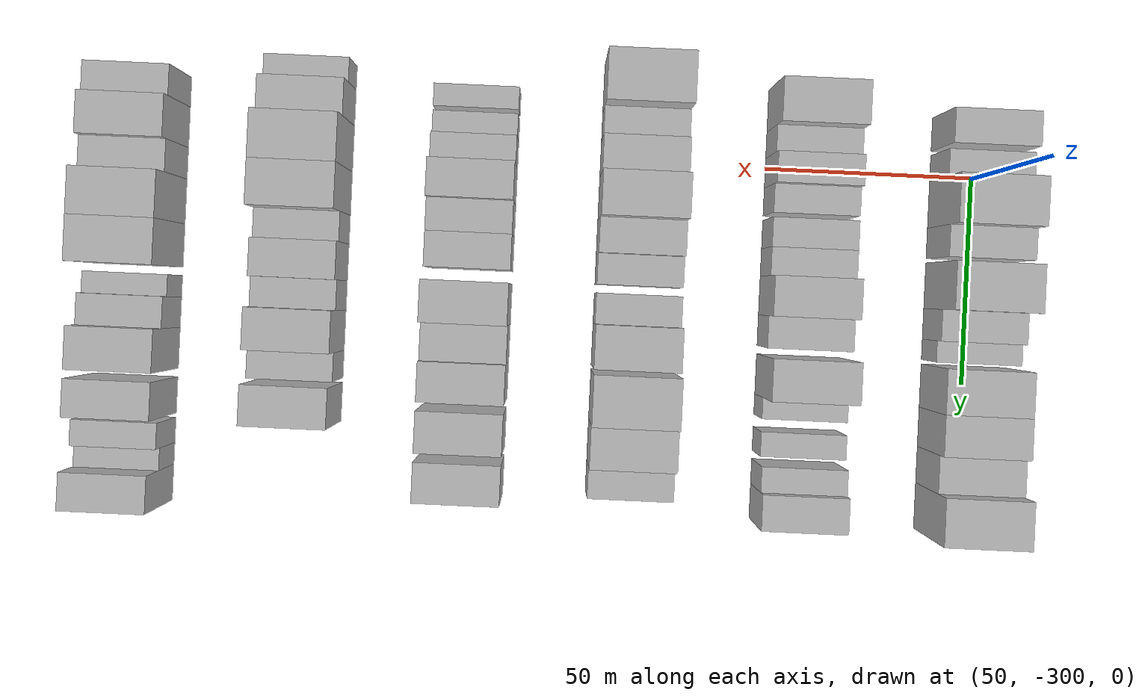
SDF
<sdf version="1.6">
 <world name="default">
  <model name="building_36">
   <static>1</static>
   <pose>50.0000 -310.2682 0 0.000000 0.000000 0.000000</pose>
   <link name="link">
    <pose>0 0 9.00 0 0 0</pose>
    <collision name="collision"><geometry><box><size>20.0000 8.1281 18.0000</size></box></geometry></collision>
    <visual name="visual">
     <cast_shadows>0</cast_shadows>
     <geometry><box><size>20.0000 8.1281 18.0000</size></box></geometry>
     <material>
      <script>
       <uri>model://HANNAS_wall/materials/scripts</uri>
       <uri>model://HANNAS_wall/materials/textures</uri>
       <name>vrc/HANNAS_wall</name>
      </script>
     </material>
    </visual>
   </link>
  </model>
  <model name="building_37">
   <static>1</static>
   <pose>50.0000 -302.0606 0 0.000000 0.000000 0.000000</pose>
   <link name="link">
    <pose>0 0 7.50 0 0 0</pose>
    <collision name="collision"><geometry><box><size>20.0000 6.2870 15.0000</size></box></geometry></collision>
    <visual name="visual">
     <cast_shadows>0</cast_shadows>
     <geometry><box><size>20.0000 6.2870 15.0000</size></box></geometry>
     <material>
      <script>
       <uri>model://HANNAS_wall/materials/scripts</uri>
       <uri>model://HANNAS_wall/materials/textures</uri>
       <name>vrc/HANNAS_wall</name>
      </script>
     </material>
    </visual>
   </link>
  </model>
  <model name="building_38">
   <static>1</static>
   <pose>50.0000 -293.2327 0 0.000000 0.000000 0.000000</pose>
   <link name="link">
    <pose>0 0 12.00 0 0 0</pose>
    <collision name="collision"><geometry><box><size>20.0000 11.3690 24.0000</size></box></geometry></collision>
    <visual name="visual">
     <cast_shadows>0</cast_shadows>
     <geometry><box><size>20.0000 11.3690 24.0000</size></box></geometry>
     <material>
      <script>
       <uri>model://HANNAS_wall/materials/scripts</uri>
       <uri>model://HANNAS_wall/materials/textures</uri>
       <name>vrc/HANNAS_wall</name>
      </script>
     </material>
    </visual>
   </link>
  </model>
  <model name="building_39">
   <static>1</static>
   <pose>50.0000 -283.8331 0 0.000000 0.000000 0.000000</pose>
   <link name="link">
    <pose>0 0 9.00 0 0 0</pose>
    <collision name="collision"><geometry><box><size>20.0000 7.4301 18.0000</size></box></geometry></collision>
    <visual name="visual">
     <cast_shadows>0</cast_shadows>
     <geometry><box><size>20.0000 7.4301 18.0000</size></box></geometry>
     <material>
      <script>
       <uri>model://HANNAS_wall/materials/scripts</uri>
       <uri>model://HANNAS_wall/materials/textures</uri>
       <name>vrc/HANNAS_wall</name>
      </script>
     </material>
    </visual>
   </link>
  </model>
  <model name="building_40">
   <static>1</static>
   <pose>50.0000 -273.5586 0 0.000000 0.000000 0.000000</pose>
   <link name="link">
    <pose>0 0 12.00 0 0 0</pose>
    <collision name="collision"><geometry><box><size>20.0000 11.1189 24.0000</size></box></geometry></collision>
    <visual name="visual">
     <cast_shadows>0</cast_shadows>
     <geometry><box><size>20.0000 11.1189 24.0000</size></box></geometry>
     <material>
      <script>
       <uri>model://HANNAS_wall/materials/scripts</uri>
       <uri>model://HANNAS_wall/materials/textures</uri>
       <name>vrc/HANNAS_wall</name>
      </script>
     </material>
    </visual>
   </link>
  </model>
  <model name="building_41">
   <static>1</static>
   <pose>50.0000 -264.3199 0 0.000000 0.000000 0.000000</pose>
   <link name="link">
    <pose>0 0 7.50 0 0 0</pose>
    <collision name="collision"><geometry><box><size>20.0000 7.3586 15.0000</size></box></geometry></collision>
    <visual name="visual">
     <cast_shadows>0</cast_shadows>
     <geometry><box><size>20.0000 7.3586 15.0000</size></box></geometry>
     <material>
      <script>
       <uri>model://HANNAS_wall/materials/scripts</uri>
       <uri>model://HANNAS_wall/materials/textures</uri>
       <name>vrc/HANNAS_wall</name>
      </script>
     </material>
    </visual>
   </link>
  </model>
  <model name="building_42">
   <static>1</static>
   <pose>50.0000 -258.1257 0 0.000000 0.000000 0.000000</pose>
   <link name="link">
    <pose>0 0 6.00 0 0 0</pose>
    <collision name="collision"><geometry><box><size>20.0000 5.0299 12.0000</size></box></geometry></collision>
    <visual name="visual">
     <cast_shadows>0</cast_shadows>
     <geometry><box><size>20.0000 5.0299 12.0000</size></box></geometry>
     <material>
      <script>
       <uri>model://HANNAS_wall/materials/scripts</uri>
       <uri>model://HANNAS_wall/materials/textures</uri>
       <name>vrc/HANNAS_wall</name>
      </script>
     </material>
    </visual>
   </link>
  </model>
  <model name="building_43">
   <static>1</static>
   <pose>50.0000 -249.3676 0 0.000000 0.000000 0.000000</pose>
   <link name="link">
    <pose>0 0 10.50 0 0 0</pose>
    <collision name="collision"><geometry><box><size>20.0000 10.4863 21.0000</size></box></geometry></collision>
    <visual name="visual">
     <cast_shadows>0</cast_shadows>
     <geometry><box><size>20.0000 10.4863 21.0000</size></box></geometry>
     <material>
      <script>
       <uri>model://HANNAS_wall/materials/scripts</uri>
       <uri>model://HANNAS_wall/materials/textures</uri>
       <name>vrc/HANNAS_wall</name>
      </script>
     </material>
    </visual>
   </link>
  </model>
  <model name="building_44">
   <static>1</static>
   <pose>50.0000 -239.3578 0 0.000000 0.000000 0.000000</pose>
   <link name="link">
    <pose>0 0 10.50 0 0 0</pose>
    <collision name="collision"><geometry><box><size>20.0000 9.5332 21.0000</size></box></geometry></collision>
    <visual name="visual">
     <cast_shadows>0</cast_shadows>
     <geometry><box><size>20.0000 9.5332 21.0000</size></box></geometry>
     <material>
      <script>
       <uri>model://HANNAS_wall/materials/scripts</uri>
       <uri>model://HANNAS_wall/materials/textures</uri>
       <name>vrc/HANNAS_wall</name>
      </script>
     </material>
    </visual>
   </link>
  </model>
  <model name="building_45">
   <static>1</static>
   <pose>50.0000 -230.1755 0 0.000000 0.000000 0.000000</pose>
   <link name="link">
    <pose>0 0 9.00 0 0 0</pose>
    <collision name="collision"><geometry><box><size>20.0000 8.8316 18.0000</size></box></geometry></collision>
    <visual name="visual">
     <cast_shadows>0</cast_shadows>
     <geometry><box><size>20.0000 8.8316 18.0000</size></box></geometry>
     <material>
      <script>
       <uri>model://HANNAS_wall/materials/scripts</uri>
       <uri>model://HANNAS_wall/materials/textures</uri>
       <name>vrc/HANNAS_wall</name>
      </script>
     </material>
    </visual>
   </link>
  </model>
  <model name="building_46">
   <static>1</static>
   <pose>50.0000 -220.2064 0 0.000000 0.000000 0.000000</pose>
   <link name="link">
    <pose>0 0 12.00 0 0 0</pose>
    <collision name="collision"><geometry><box><size>20.0000 11.1066 24.0000</size></box></geometry></collision>
    <visual name="visual">
     <cast_shadows>0</cast_shadows>
     <geometry><box><size>20.0000 11.1066 24.0000</size></box></geometry>
     <material>
      <script>
       <uri>model://HANNAS_wall/materials/scripts</uri>
       <uri>model://HANNAS_wall/materials/textures</uri>
       <name>vrc/HANNAS_wall</name>
      </script>
     </material>
    </visual>
   </link>
  </model>
  <model name="building_174">
   <static>1</static>
   <pose>90.0000 -314.0239 0 0.000000 0.000000 0.000000</pose>
   <link name="link">
    <pose>0 0 10.50 0 0 0</pose>
    <collision name="collision"><geometry><box><size>20.0000 10.2021 21.0000</size></box></geometry></collision>
    <visual name="visual">
     <cast_shadows>0</cast_shadows>
     <geometry><box><size>20.0000 10.2021 21.0000</size></box></geometry>
     <material>
      <script>
       <uri>model://HANNAS_wall/materials/scripts</uri>
       <uri>model://HANNAS_wall/materials/textures</uri>
       <name>vrc/HANNAS_wall</name>
      </script>
     </material>
    </visual>
   </link>
  </model>
  <model name="building_175">
   <static>1</static>
   <pose>90.0000 -305.7463 0 0.000000 0.000000 0.000000</pose>
   <link name="link">
    <pose>0 0 7.50 0 0 0</pose>
    <collision name="collision"><geometry><box><size>20.0000 6.3532 15.0000</size></box></geometry></collision>
    <visual name="visual">
     <cast_shadows>0</cast_shadows>
     <geometry><box><size>20.0000 6.3532 15.0000</size></box></geometry>
     <material>
      <script>
       <uri>model://HANNAS_wall/materials/scripts</uri>
       <uri>model://HANNAS_wall/materials/textures</uri>
       <name>vrc/HANNAS_wall</name>
      </script>
     </material>
    </visual>
   </link>
  </model>
  <model name="building_176">
   <static>1</static>
   <pose>90.0000 -298.9471 0 0.000000 0.000000 0.000000</pose>
   <link name="link">
    <pose>0 0 9.00 0 0 0</pose>
    <collision name="collision"><geometry><box><size>20.0000 7.2453 18.0000</size></box></geometry></collision>
    <visual name="visual">
     <cast_shadows>0</cast_shadows>
     <geometry><box><size>20.0000 7.2453 18.0000</size></box></geometry>
     <material>
      <script>
       <uri>model://HANNAS_wall/materials/scripts</uri>
       <uri>model://HANNAS_wall/materials/textures</uri>
       <name>vrc/HANNAS_wall</name>
      </script>
     </material>
    </visual>
   </link>
  </model>
  <model name="building_177">
   <static>1</static>
   <pose>90.0000 -291.9489 0 0.000000 0.000000 0.000000</pose>
   <link name="link">
    <pose>0 0 7.50 0 0 0</pose>
    <collision name="collision"><geometry><box><size>20.0000 6.7512 15.0000</size></box></geometry></collision>
    <visual name="visual">
     <cast_shadows>0</cast_shadows>
     <geometry><box><size>20.0000 6.7512 15.0000</size></box></geometry>
     <material>
      <script>
       <uri>model://HANNAS_wall/materials/scripts</uri>
       <uri>model://HANNAS_wall/materials/textures</uri>
       <name>vrc/HANNAS_wall</name>
      </script>
     </material>
    </visual>
   </link>
  </model>
  <model name="building_178">
   <static>1</static>
   <pose>90.0000 -284.1256 0 0.000000 0.000000 0.000000</pose>
   <link name="link">
    <pose>0 0 7.50 0 0 0</pose>
    <collision name="collision"><geometry><box><size>20.0000 6.8954 15.0000</size></box></geometry></collision>
    <visual name="visual">
     <cast_shadows>0</cast_shadows>
     <geometry><box><size>20.0000 6.8954 15.0000</size></box></geometry>
     <material>
      <script>
       <uri>model://HANNAS_wall/materials/scripts</uri>
       <uri>model://HANNAS_wall/materials/textures</uri>
       <name>vrc/HANNAS_wall</name>
      </script>
     </material>
    </visual>
   </link>
  </model>
  <model name="building_179">
   <static>1</static>
   <pose>90.0000 -277.3339 0 0.000000 0.000000 0.000000</pose>
   <link name="link">
    <pose>0 0 7.50 0 0 0</pose>
    <collision name="collision"><geometry><box><size>20.0000 6.6880 15.0000</size></box></geometry></collision>
    <visual name="visual">
     <cast_shadows>0</cast_shadows>
     <geometry><box><size>20.0000 6.6880 15.0000</size></box></geometry>
     <material>
      <script>
       <uri>model://HANNAS_wall/materials/scripts</uri>
       <uri>model://HANNAS_wall/materials/textures</uri>
       <name>vrc/HANNAS_wall</name>
      </script>
     </material>
    </visual>
   </link>
  </model>
  <model name="building_180">
   <static>1</static>
   <pose>90.0000 -269.3341 0 0.000000 0.000000 0.000000</pose>
   <link name="link">
    <pose>0 0 10.50 0 0 0</pose>
    <collision name="collision"><geometry><box><size>20.0000 9.3115 21.0000</size></box></geometry></collision>
    <visual name="visual">
     <cast_shadows>0</cast_shadows>
     <geometry><box><size>20.0000 9.3115 21.0000</size></box></geometry>
     <material>
      <script>
       <uri>model://HANNAS_wall/materials/scripts</uri>
       <uri>model://HANNAS_wall/materials/textures</uri>
       <name>vrc/HANNAS_wall</name>
      </script>
     </material>
    </visual>
   </link>
  </model>
  <model name="building_181">
   <static>1</static>
   <pose>90.0000 -260.9317 0 0.000000 0.000000 0.000000</pose>
   <link name="link">
    <pose>0 0 7.50 0 0 0</pose>
    <collision name="collision"><geometry><box><size>20.0000 7.4934 15.0000</size></box></geometry></collision>
    <visual name="visual">
     <cast_shadows>0</cast_shadows>
     <geometry><box><size>20.0000 7.4934 15.0000</size></box></geometry>
     <material>
      <script>
       <uri>model://HANNAS_wall/materials/scripts</uri>
       <uri>model://HANNAS_wall/materials/textures</uri>
       <name>vrc/HANNAS_wall</name>
      </script>
     </material>
    </visual>
   </link>
  </model>
  <model name="building_182">
   <static>1</static>
   <pose>90.0000 -250.3432 0 0.000000 0.000000 0.000000</pose>
   <link name="link">
    <pose>0 0 12.00 0 0 0</pose>
    <collision name="collision"><geometry><box><size>20.0000 9.6837 24.0000</size></box></geometry></collision>
    <visual name="visual">
     <cast_shadows>0</cast_shadows>
     <geometry><box><size>20.0000 9.6837 24.0000</size></box></geometry>
     <material>
      <script>
       <uri>model://HANNAS_wall/materials/scripts</uri>
       <uri>model://HANNAS_wall/materials/textures</uri>
       <name>vrc/HANNAS_wall</name>
      </script>
     </material>
    </visual>
   </link>
  </model>
  <model name="building_183">
   <static>1</static>
   <pose>90.0000 -243.0185 0 0.000000 0.000000 0.000000</pose>
   <link name="link">
    <pose>0 0 6.00 0 0 0</pose>
    <collision name="collision"><geometry><box><size>20.0000 4.9656 12.0000</size></box></geometry></collision>
    <visual name="visual">
     <cast_shadows>0</cast_shadows>
     <geometry><box><size>20.0000 4.9656 12.0000</size></box></geometry>
     <material>
      <script>
       <uri>model://HANNAS_wall/materials/scripts</uri>
       <uri>model://HANNAS_wall/materials/textures</uri>
       <name>vrc/HANNAS_wall</name>
      </script>
     </material>
    </visual>
   </link>
  </model>
  <model name="building_184">
   <static>1</static>
   <pose>90.0000 -234.6496 0 0.000000 0.000000 0.000000</pose>
   <link name="link">
    <pose>0 0 6.00 0 0 0</pose>
    <collision name="collision"><geometry><box><size>20.0000 5.7723 12.0000</size></box></geometry></collision>
    <visual name="visual">
     <cast_shadows>0</cast_shadows>
     <geometry><box><size>20.0000 5.7723 12.0000</size></box></geometry>
     <material>
      <script>
       <uri>model://HANNAS_wall/materials/scripts</uri>
       <uri>model://HANNAS_wall/materials/textures</uri>
       <name>vrc/HANNAS_wall</name>
      </script>
     </material>
    </visual>
   </link>
  </model>
  <model name="building_185">
   <static>1</static>
   <pose>90.0000 -226.7459 0 0.000000 0.000000 0.000000</pose>
   <link name="link">
    <pose>0 0 7.50 0 0 0</pose>
    <collision name="collision"><geometry><box><size>20.0000 6.0350 15.0000</size></box></geometry></collision>
    <visual name="visual">
     <cast_shadows>0</cast_shadows>
     <geometry><box><size>20.0000 6.0350 15.0000</size></box></geometry>
     <material>
      <script>
       <uri>model://HANNAS_wall/materials/scripts</uri>
       <uri>model://HANNAS_wall/materials/textures</uri>
       <name>vrc/HANNAS_wall</name>
      </script>
     </material>
    </visual>
   </link>
  </model>
  <model name="building_186">
   <static>1</static>
   <pose>90.0000 -219.5596 0 0.000000 0.000000 0.000000</pose>
   <link name="link">
    <pose>0 0 9.00 0 0 0</pose>
    <collision name="collision"><geometry><box><size>20.0000 8.3377 18.0000</size></box></geometry></collision>
    <visual name="visual">
     <cast_shadows>0</cast_shadows>
     <geometry><box><size>20.0000 8.3377 18.0000</size></box></geometry>
     <material>
      <script>
       <uri>model://HANNAS_wall/materials/scripts</uri>
       <uri>model://HANNAS_wall/materials/textures</uri>
       <name>vrc/HANNAS_wall</name>
      </script>
     </material>
    </visual>
   </link>
  </model>
  <model name="building_315">
   <static>1</static>
   <pose>130.0000 -317.4107 0 0.000000 0.000000 0.000000</pose>
   <link name="link">
    <pose>0 0 12.00 0 0 0</pose>
    <collision name="collision"><geometry><box><size>20.0000 11.8646 24.0000</size></box></geometry></collision>
    <visual name="visual">
     <cast_shadows>0</cast_shadows>
     <geometry><box><size>20.0000 11.8646 24.0000</size></box></geometry>
     <material>
      <script>
       <uri>model://HANNAS_wall/materials/scripts</uri>
       <uri>model://HANNAS_wall/materials/textures</uri>
       <name>vrc/HANNAS_wall</name>
      </script>
     </material>
    </visual>
   </link>
  </model>
  <model name="building_316">
   <static>1</static>
   <pose>130.0000 -308.0843 0 0.000000 0.000000 0.000000</pose>
   <link name="link">
    <pose>0 0 7.50 0 0 0</pose>
    <collision name="collision"><geometry><box><size>20.0000 6.7880 15.0000</size></box></geometry></collision>
    <visual name="visual">
     <cast_shadows>0</cast_shadows>
     <geometry><box><size>20.0000 6.7880 15.0000</size></box></geometry>
     <material>
      <script>
       <uri>model://HANNAS_wall/materials/scripts</uri>
       <uri>model://HANNAS_wall/materials/textures</uri>
       <name>vrc/HANNAS_wall</name>
      </script>
     </material>
    </visual>
   </link>
  </model>
  <model name="building_317">
   <static>1</static>
   <pose>130.0000 -300.3633 0 0.000000 0.000000 0.000000</pose>
   <link name="link">
    <pose>0 0 9.00 0 0 0</pose>
    <collision name="collision"><geometry><box><size>20.0000 8.6539 18.0000</size></box></geometry></collision>
    <visual name="visual">
     <cast_shadows>0</cast_shadows>
     <geometry><box><size>20.0000 8.6539 18.0000</size></box></geometry>
     <material>
      <script>
       <uri>model://HANNAS_wall/materials/scripts</uri>
       <uri>model://HANNAS_wall/materials/textures</uri>
       <name>vrc/HANNAS_wall</name>
      </script>
     </material>
    </visual>
   </link>
  </model>
  <model name="building_318">
   <static>1</static>
   <pose>130.0000 -290.8211 0 0.000000 0.000000 0.000000</pose>
   <link name="link">
    <pose>0 0 12.00 0 0 0</pose>
    <collision name="collision"><geometry><box><size>20.0000 10.4305 24.0000</size></box></geometry></collision>
    <visual name="visual">
     <cast_shadows>0</cast_shadows>
     <geometry><box><size>20.0000 10.4305 24.0000</size></box></geometry>
     <material>
      <script>
       <uri>model://HANNAS_wall/materials/scripts</uri>
       <uri>model://HANNAS_wall/materials/textures</uri>
       <name>vrc/HANNAS_wall</name>
      </script>
     </material>
    </visual>
   </link>
  </model>
  <model name="building_319">
   <static>1</static>
   <pose>130.0000 -281.4815 0 0.000000 0.000000 0.000000</pose>
   <link name="link">
    <pose>0 0 9.00 0 0 0</pose>
    <collision name="collision"><geometry><box><size>20.0000 8.2488 18.0000</size></box></geometry></collision>
    <visual name="visual">
     <cast_shadows>0</cast_shadows>
     <geometry><box><size>20.0000 8.2488 18.0000</size></box></geometry>
     <material>
      <script>
       <uri>model://HANNAS_wall/materials/scripts</uri>
       <uri>model://HANNAS_wall/materials/textures</uri>
       <name>vrc/HANNAS_wall</name>
      </script>
     </material>
    </visual>
   </link>
  </model>
  <model name="building_320">
   <static>1</static>
   <pose>130.0000 -273.7382 0 0.000000 0.000000 0.000000</pose>
   <link name="link">
    <pose>0 0 7.50 0 0 0</pose>
    <collision name="collision"><geometry><box><size>20.0000 7.2378 15.0000</size></box></geometry></collision>
    <visual name="visual">
     <cast_shadows>0</cast_shadows>
     <geometry><box><size>20.0000 7.2378 15.0000</size></box></geometry>
     <material>
      <script>
       <uri>model://HANNAS_wall/materials/scripts</uri>
       <uri>model://HANNAS_wall/materials/textures</uri>
       <name>vrc/HANNAS_wall</name>
      </script>
     </material>
    </visual>
   </link>
  </model>
  <model name="building_321">
   <static>1</static>
   <pose>130.0000 -264.5063 0 0.000000 0.000000 0.000000</pose>
   <link name="link">
    <pose>0 0 7.50 0 0 0</pose>
    <collision name="collision"><geometry><box><size>20.0000 7.2259 15.0000</size></box></geometry></collision>
    <visual name="visual">
     <cast_shadows>0</cast_shadows>
     <geometry><box><size>20.0000 7.2259 15.0000</size></box></geometry>
     <material>
      <script>
       <uri>model://HANNAS_wall/materials/scripts</uri>
       <uri>model://HANNAS_wall/materials/textures</uri>
       <name>vrc/HANNAS_wall</name>
      </script>
     </material>
    </visual>
   </link>
  </model>
  <model name="building_322">
   <static>1</static>
   <pose>130.0000 -255.8008 0 0.000000 0.000000 0.000000</pose>
   <link name="link">
    <pose>0 0 10.50 0 0 0</pose>
    <collision name="collision"><geometry><box><size>20.0000 10.1851 21.0000</size></box></geometry></collision>
    <visual name="visual">
     <cast_shadows>0</cast_shadows>
     <geometry><box><size>20.0000 10.1851 21.0000</size></box></geometry>
     <material>
      <script>
       <uri>model://HANNAS_wall/materials/scripts</uri>
       <uri>model://HANNAS_wall/materials/textures</uri>
       <name>vrc/HANNAS_wall</name>
      </script>
     </material>
    </visual>
   </link>
  </model>
  <model name="building_323">
   <static>1</static>
   <pose>130.0000 -243.7885 0 0.000000 0.000000 0.000000</pose>
   <link name="link">
    <pose>0 0 12.00 0 0 0</pose>
    <collision name="collision"><geometry><box><size>20.0000 11.8395 24.0000</size></box></geometry></collision>
    <visual name="visual">
     <cast_shadows>0</cast_shadows>
     <geometry><box><size>20.0000 11.8395 24.0000</size></box></geometry>
     <material>
      <script>
       <uri>model://HANNAS_wall/materials/scripts</uri>
       <uri>model://HANNAS_wall/materials/textures</uri>
       <name>vrc/HANNAS_wall</name>
      </script>
     </material>
    </visual>
   </link>
  </model>
  <model name="building_324">
   <static>1</static>
   <pose>130.0000 -232.9279 0 0.000000 0.000000 0.000000</pose>
   <link name="link">
    <pose>0 0 10.50 0 0 0</pose>
    <collision name="collision"><geometry><box><size>20.0000 9.8816 21.0000</size></box></geometry></collision>
    <visual name="visual">
     <cast_shadows>0</cast_shadows>
     <geometry><box><size>20.0000 9.8816 21.0000</size></box></geometry>
     <material>
      <script>
       <uri>model://HANNAS_wall/materials/scripts</uri>
       <uri>model://HANNAS_wall/materials/textures</uri>
       <name>vrc/HANNAS_wall</name>
      </script>
     </material>
    </visual>
   </link>
  </model>
  <model name="building_325">
   <static>1</static>
   <pose>130.0000 -224.2596 0 0.000000 0.000000 0.000000</pose>
   <link name="link">
    <pose>0 0 7.50 0 0 0</pose>
    <collision name="collision"><geometry><box><size>20.0000 7.4551 15.0000</size></box></geometry></collision>
    <visual name="visual">
     <cast_shadows>0</cast_shadows>
     <geometry><box><size>20.0000 7.4551 15.0000</size></box></geometry>
     <material>
      <script>
       <uri>model://HANNAS_wall/materials/scripts</uri>
       <uri>model://HANNAS_wall/materials/textures</uri>
       <name>vrc/HANNAS_wall</name>
      </script>
     </material>
    </visual>
   </link>
  </model>
  <model name="building_441">
   <static>1</static>
   <pose>170.0000 -312.6405 0 0.000000 0.000000 0.000000</pose>
   <link name="link">
    <pose>0 0 6.00 0 0 0</pose>
    <collision name="collision"><geometry><box><size>20.0000 5.2715 12.0000</size></box></geometry></collision>
    <visual name="visual">
     <cast_shadows>0</cast_shadows>
     <geometry><box><size>20.0000 5.2715 12.0000</size></box></geometry>
     <material>
      <script>
       <uri>model://HANNAS_wall/materials/scripts</uri>
       <uri>model://HANNAS_wall/materials/textures</uri>
       <name>vrc/HANNAS_wall</name>
      </script>
     </material>
    </visual>
   </link>
  </model>
  <model name="building_442">
   <static>1</static>
   <pose>170.0000 -306.3109 0 0.000000 0.000000 0.000000</pose>
   <link name="link">
    <pose>0 0 6.00 0 0 0</pose>
    <collision name="collision"><geometry><box><size>20.0000 5.3875 12.0000</size></box></geometry></collision>
    <visual name="visual">
     <cast_shadows>0</cast_shadows>
     <geometry><box><size>20.0000 5.3875 12.0000</size></box></geometry>
     <material>
      <script>
       <uri>model://HANNAS_wall/materials/scripts</uri>
       <uri>model://HANNAS_wall/materials/textures</uri>
       <name>vrc/HANNAS_wall</name>
      </script>
     </material>
    </visual>
   </link>
  </model>
  <model name="building_443">
   <static>1</static>
   <pose>170.0000 -300.3593 0 0.000000 0.000000 0.000000</pose>
   <link name="link">
    <pose>0 0 7.50 0 0 0</pose>
    <collision name="collision"><geometry><box><size>20.0000 6.5158 15.0000</size></box></geometry></collision>
    <visual name="visual">
     <cast_shadows>0</cast_shadows>
     <geometry><box><size>20.0000 6.5158 15.0000</size></box></geometry>
     <material>
      <script>
       <uri>model://HANNAS_wall/materials/scripts</uri>
       <uri>model://HANNAS_wall/materials/textures</uri>
       <name>vrc/HANNAS_wall</name>
      </script>
     </material>
    </visual>
   </link>
  </model>
  <model name="building_444">
   <static>1</static>
   <pose>170.0000 -292.6764 0 0.000000 0.000000 0.000000</pose>
   <link name="link">
    <pose>0 0 10.50 0 0 0</pose>
    <collision name="collision"><geometry><box><size>20.0000 8.8499 21.0000</size></box></geometry></collision>
    <visual name="visual">
     <cast_shadows>0</cast_shadows>
     <geometry><box><size>20.0000 8.8499 21.0000</size></box></geometry>
     <material>
      <script>
       <uri>model://HANNAS_wall/materials/scripts</uri>
       <uri>model://HANNAS_wall/materials/textures</uri>
       <name>vrc/HANNAS_wall</name>
      </script>
     </material>
    </visual>
   </link>
  </model>
  <model name="building_445">
   <static>1</static>
   <pose>170.0000 -284.4262 0 0.000000 0.000000 0.000000</pose>
   <link name="link">
    <pose>0 0 9.00 0 0 0</pose>
    <collision name="collision"><geometry><box><size>20.0000 7.6505 18.0000</size></box></geometry></collision>
    <visual name="visual">
     <cast_shadows>0</cast_shadows>
     <geometry><box><size>20.0000 7.6505 18.0000</size></box></geometry>
     <material>
      <script>
       <uri>model://HANNAS_wall/materials/scripts</uri>
       <uri>model://HANNAS_wall/materials/textures</uri>
       <name>vrc/HANNAS_wall</name>
      </script>
     </material>
    </visual>
   </link>
  </model>
  <model name="building_446">
   <static>1</static>
   <pose>170.0000 -276.4540 0 0.000000 0.000000 0.000000</pose>
   <link name="link">
    <pose>0 0 9.00 0 0 0</pose>
    <collision name="collision"><geometry><box><size>20.0000 8.2937 18.0000</size></box></geometry></collision>
    <visual name="visual">
     <cast_shadows>0</cast_shadows>
     <geometry><box><size>20.0000 8.2937 18.0000</size></box></geometry>
     <material>
      <script>
       <uri>model://HANNAS_wall/materials/scripts</uri>
       <uri>model://HANNAS_wall/materials/textures</uri>
       <name>vrc/HANNAS_wall</name>
      </script>
     </material>
    </visual>
   </link>
  </model>
  <model name="building_447">
   <static>1</static>
   <pose>170.0000 -264.4535 0 0.000000 0.000000 0.000000</pose>
   <link name="link">
    <pose>0 0 12.00 0 0 0</pose>
    <collision name="collision"><geometry><box><size>20.0000 9.7073 24.0000</size></box></geometry></collision>
    <visual name="visual">
     <cast_shadows>0</cast_shadows>
     <geometry><box><size>20.0000 9.7073 24.0000</size></box></geometry>
     <material>
      <script>
       <uri>model://HANNAS_wall/materials/scripts</uri>
       <uri>model://HANNAS_wall/materials/textures</uri>
       <name>vrc/HANNAS_wall</name>
      </script>
     </material>
    </visual>
   </link>
  </model>
  <model name="building_448">
   <static>1</static>
   <pose>170.0000 -255.1632 0 0.000000 0.000000 0.000000</pose>
   <link name="link">
    <pose>0 0 9.00 0 0 0</pose>
    <collision name="collision"><geometry><box><size>20.0000 8.8734 18.0000</size></box></geometry></collision>
    <visual name="visual">
     <cast_shadows>0</cast_shadows>
     <geometry><box><size>20.0000 8.8734 18.0000</size></box></geometry>
     <material>
      <script>
       <uri>model://HANNAS_wall/materials/scripts</uri>
       <uri>model://HANNAS_wall/materials/textures</uri>
       <name>vrc/HANNAS_wall</name>
      </script>
     </material>
    </visual>
   </link>
  </model>
  <model name="building_449">
   <static>1</static>
   <pose>170.0000 -246.1115 0 0.000000 0.000000 0.000000</pose>
   <link name="link">
    <pose>0 0 10.50 0 0 0</pose>
    <collision name="collision"><geometry><box><size>20.0000 9.2299 21.0000</size></box></geometry></collision>
    <visual name="visual">
     <cast_shadows>0</cast_shadows>
     <geometry><box><size>20.0000 9.2299 21.0000</size></box></geometry>
     <material>
      <script>
       <uri>model://HANNAS_wall/materials/scripts</uri>
       <uri>model://HANNAS_wall/materials/textures</uri>
       <name>vrc/HANNAS_wall</name>
      </script>
     </material>
    </visual>
   </link>
  </model>
  <model name="building_450">
   <static>1</static>
   <pose>170.0000 -234.6754 0 0.000000 0.000000 0.000000</pose>
   <link name="link">
    <pose>0 0 10.50 0 0 0</pose>
    <collision name="collision"><geometry><box><size>20.0000 9.6423 21.0000</size></box></geometry></collision>
    <visual name="visual">
     <cast_shadows>0</cast_shadows>
     <geometry><box><size>20.0000 9.6423 21.0000</size></box></geometry>
     <material>
      <script>
       <uri>model://HANNAS_wall/materials/scripts</uri>
       <uri>model://HANNAS_wall/materials/textures</uri>
       <name>vrc/HANNAS_wall</name>
      </script>
     </material>
    </visual>
   </link>
  </model>
  <model name="building_451">
   <static>1</static>
   <pose>170.0000 -223.2006 0 0.000000 0.000000 0.000000</pose>
   <link name="link">
    <pose>0 0 10.50 0 0 0</pose>
    <collision name="collision"><geometry><box><size>20.0000 9.3072 21.0000</size></box></geometry></collision>
    <visual name="visual">
     <cast_shadows>0</cast_shadows>
     <geometry><box><size>20.0000 9.3072 21.0000</size></box></geometry>
     <material>
      <script>
       <uri>model://HANNAS_wall/materials/scripts</uri>
       <uri>model://HANNAS_wall/materials/textures</uri>
       <name>vrc/HANNAS_wall</name>
      </script>
     </material>
    </visual>
   </link>
  </model>
  <model name="building_581">
   <static>1</static>
   <pose>210.0000 -317.4663 0 0.000000 0.000000 0.000000</pose>
   <link name="link">
    <pose>0 0 6.00 0 0 0</pose>
    <collision name="collision"><geometry><box><size>20.0000 5.7768 12.0000</size></box></geometry></collision>
    <visual name="visual">
     <cast_shadows>0</cast_shadows>
     <geometry><box><size>20.0000 5.7768 12.0000</size></box></geometry>
     <material>
      <script>
       <uri>model://HANNAS_wall/materials/scripts</uri>
       <uri>model://HANNAS_wall/materials/textures</uri>
       <name>vrc/HANNAS_wall</name>
      </script>
     </material>
    </visual>
   </link>
  </model>
  <model name="building_582">
   <static>1</static>
   <pose>210.0000 -310.2305 0 0.000000 0.000000 0.000000</pose>
   <link name="link">
    <pose>0 0 9.00 0 0 0</pose>
    <collision name="collision"><geometry><box><size>20.0000 8.6950 18.0000</size></box></geometry></collision>
    <visual name="visual">
     <cast_shadows>0</cast_shadows>
     <geometry><box><size>20.0000 8.6950 18.0000</size></box></geometry>
     <material>
      <script>
       <uri>model://HANNAS_wall/materials/scripts</uri>
       <uri>model://HANNAS_wall/materials/textures</uri>
       <name>vrc/HANNAS_wall</name>
      </script>
     </material>
    </visual>
   </link>
  </model>
  <model name="building_583">
   <static>1</static>
   <pose>210.0000 -300.3068 0 0.000000 0.000000 0.000000</pose>
   <link name="link">
    <pose>0 0 12.00 0 0 0</pose>
    <collision name="collision"><geometry><box><size>20.0000 11.1523 24.0000</size></box></geometry></collision>
    <visual name="visual">
     <cast_shadows>0</cast_shadows>
     <geometry><box><size>20.0000 11.1523 24.0000</size></box></geometry>
     <material>
      <script>
       <uri>model://HANNAS_wall/materials/scripts</uri>
       <uri>model://HANNAS_wall/materials/textures</uri>
       <name>vrc/HANNAS_wall</name>
      </script>
     </material>
    </visual>
   </link>
  </model>
  <model name="building_584">
   <static>1</static>
   <pose>210.0000 -289.4546 0 0.000000 0.000000 0.000000</pose>
   <link name="link">
    <pose>0 0 12.00 0 0 0</pose>
    <collision name="collision"><geometry><box><size>20.0000 10.5522 24.0000</size></box></geometry></collision>
    <visual name="visual">
     <cast_shadows>0</cast_shadows>
     <geometry><box><size>20.0000 10.5522 24.0000</size></box></geometry>
     <material>
      <script>
       <uri>model://HANNAS_wall/materials/scripts</uri>
       <uri>model://HANNAS_wall/materials/textures</uri>
       <name>vrc/HANNAS_wall</name>
      </script>
     </material>
    </visual>
   </link>
  </model>
  <model name="building_585">
   <static>1</static>
   <pose>210.0000 -280.6766 0 0.000000 0.000000 0.000000</pose>
   <link name="link">
    <pose>0 0 7.50 0 0 0</pose>
    <collision name="collision"><geometry><box><size>20.0000 7.0038 15.0000</size></box></geometry></collision>
    <visual name="visual">
     <cast_shadows>0</cast_shadows>
     <geometry><box><size>20.0000 7.0038 15.0000</size></box></geometry>
     <material>
      <script>
       <uri>model://HANNAS_wall/materials/scripts</uri>
       <uri>model://HANNAS_wall/materials/textures</uri>
       <name>vrc/HANNAS_wall</name>
      </script>
     </material>
    </visual>
   </link>
  </model>
  <model name="building_586">
   <static>1</static>
   <pose>210.0000 -272.7328 0 0.000000 0.000000 0.000000</pose>
   <link name="link">
    <pose>0 0 9.00 0 0 0</pose>
    <collision name="collision"><geometry><box><size>20.0000 8.8838 18.0000</size></box></geometry></collision>
    <visual name="visual">
     <cast_shadows>0</cast_shadows>
     <geometry><box><size>20.0000 8.8838 18.0000</size></box></geometry>
     <material>
      <script>
       <uri>model://HANNAS_wall/materials/scripts</uri>
       <uri>model://HANNAS_wall/materials/textures</uri>
       <name>vrc/HANNAS_wall</name>
      </script>
     </material>
    </visual>
   </link>
  </model>
  <model name="building_587">
   <static>1</static>
   <pose>210.0000 -264.7439 0 0.000000 0.000000 0.000000</pose>
   <link name="link">
    <pose>0 0 7.50 0 0 0</pose>
    <collision name="collision"><geometry><box><size>20.0000 7.0941 15.0000</size></box></geometry></collision>
    <visual name="visual">
     <cast_shadows>0</cast_shadows>
     <geometry><box><size>20.0000 7.0941 15.0000</size></box></geometry>
     <material>
      <script>
       <uri>model://HANNAS_wall/materials/scripts</uri>
       <uri>model://HANNAS_wall/materials/textures</uri>
       <name>vrc/HANNAS_wall</name>
      </script>
     </material>
    </visual>
   </link>
  </model>
  <model name="building_588">
   <static>1</static>
   <pose>210.0000 -256.3049 0 0.000000 0.000000 0.000000</pose>
   <link name="link">
    <pose>0 0 10.50 0 0 0</pose>
    <collision name="collision"><geometry><box><size>20.0000 9.7839 21.0000</size></box></geometry></collision>
    <visual name="visual">
     <cast_shadows>0</cast_shadows>
     <geometry><box><size>20.0000 9.7839 21.0000</size></box></geometry>
     <material>
      <script>
       <uri>model://HANNAS_wall/materials/scripts</uri>
       <uri>model://HANNAS_wall/materials/textures</uri>
       <name>vrc/HANNAS_wall</name>
      </script>
     </material>
    </visual>
   </link>
  </model>
  <model name="building_589">
   <static>1</static>
   <pose>210.0000 -248.0198 0 0.000000 0.000000 0.000000</pose>
   <link name="link">
    <pose>0 0 7.50 0 0 0</pose>
    <collision name="collision"><geometry><box><size>20.0000 6.7863 15.0000</size></box></geometry></collision>
    <visual name="visual">
     <cast_shadows>0</cast_shadows>
     <geometry><box><size>20.0000 6.7863 15.0000</size></box></geometry>
     <material>
      <script>
       <uri>model://HANNAS_wall/materials/scripts</uri>
       <uri>model://HANNAS_wall/materials/textures</uri>
       <name>vrc/HANNAS_wall</name>
      </script>
     </material>
    </visual>
   </link>
  </model>
  <model name="building_590">
   <static>1</static>
   <pose>210.0000 -238.8946 0 0.000000 0.000000 0.000000</pose>
   <link name="link">
    <pose>0 0 10.50 0 0 0</pose>
    <collision name="collision"><geometry><box><size>20.0000 9.4641 21.0000</size></box></geometry></collision>
    <visual name="visual">
     <cast_shadows>0</cast_shadows>
     <geometry><box><size>20.0000 9.4641 21.0000</size></box></geometry>
     <material>
      <script>
       <uri>model://HANNAS_wall/materials/scripts</uri>
       <uri>model://HANNAS_wall/materials/textures</uri>
       <name>vrc/HANNAS_wall</name>
      </script>
     </material>
    </visual>
   </link>
  </model>
  <model name="building_719">
   <static>1</static>
   <pose>250.0000 -312.2172 0 0.000000 0.000000 0.000000</pose>
   <link name="link">
    <pose>0 0 9.00 0 0 0</pose>
    <collision name="collision"><geometry><box><size>20.0000 7.2257 18.0000</size></box></geometry></collision>
    <visual name="visual">
     <cast_shadows>0</cast_shadows>
     <geometry><box><size>20.0000 7.2257 18.0000</size></box></geometry>
     <material>
      <script>
       <uri>model://HANNAS_wall/materials/scripts</uri>
       <uri>model://HANNAS_wall/materials/textures</uri>
       <name>vrc/HANNAS_wall</name>
      </script>
     </material>
    </visual>
   </link>
  </model>
  <model name="building_720">
   <static>1</static>
   <pose>250.0000 -303.6729 0 0.000000 0.000000 0.000000</pose>
   <link name="link">
    <pose>0 0 10.50 0 0 0</pose>
    <collision name="collision"><geometry><box><size>20.0000 9.8628 21.0000</size></box></geometry></collision>
    <visual name="visual">
     <cast_shadows>0</cast_shadows>
     <geometry><box><size>20.0000 9.8628 21.0000</size></box></geometry>
     <material>
      <script>
       <uri>model://HANNAS_wall/materials/scripts</uri>
       <uri>model://HANNAS_wall/materials/textures</uri>
       <name>vrc/HANNAS_wall</name>
      </script>
     </material>
    </visual>
   </link>
  </model>
  <model name="building_721">
   <static>1</static>
   <pose>250.0000 -294.9348 0 0.000000 0.000000 0.000000</pose>
   <link name="link">
    <pose>0 0 9.00 0 0 0</pose>
    <collision name="collision"><geometry><box><size>20.0000 7.6135 18.0000</size></box></geometry></collision>
    <visual name="visual">
     <cast_shadows>0</cast_shadows>
     <geometry><box><size>20.0000 7.6135 18.0000</size></box></geometry>
     <material>
      <script>
       <uri>model://HANNAS_wall/materials/scripts</uri>
       <uri>model://HANNAS_wall/materials/textures</uri>
       <name>vrc/HANNAS_wall</name>
      </script>
     </material>
    </visual>
   </link>
  </model>
  <model name="building_722">
   <static>1</static>
   <pose>250.0000 -285.6847 0 0.000000 0.000000 0.000000</pose>
   <link name="link">
    <pose>0 0 12.00 0 0 0</pose>
    <collision name="collision"><geometry><box><size>20.0000 10.8865 24.0000</size></box></geometry></collision>
    <visual name="visual">
     <cast_shadows>0</cast_shadows>
     <geometry><box><size>20.0000 10.8865 24.0000</size></box></geometry>
     <material>
      <script>
       <uri>model://HANNAS_wall/materials/scripts</uri>
       <uri>model://HANNAS_wall/materials/textures</uri>
       <name>vrc/HANNAS_wall</name>
      </script>
     </material>
    </visual>
   </link>
  </model>
  <model name="building_723">
   <static>1</static>
   <pose>250.0000 -274.9724 0 0.000000 0.000000 0.000000</pose>
   <link name="link">
    <pose>0 0 12.00 0 0 0</pose>
    <collision name="collision"><geometry><box><size>20.0000 10.5381 24.0000</size></box></geometry></collision>
    <visual name="visual">
     <cast_shadows>0</cast_shadows>
     <geometry><box><size>20.0000 10.5381 24.0000</size></box></geometry>
     <material>
      <script>
       <uri>model://HANNAS_wall/materials/scripts</uri>
       <uri>model://HANNAS_wall/materials/textures</uri>
       <name>vrc/HANNAS_wall</name>
      </script>
     </material>
    </visual>
   </link>
  </model>
  <model name="building_724">
   <static>1</static>
   <pose>250.0000 -265.1360 0 0.000000 0.000000 0.000000</pose>
   <link name="link">
    <pose>0 0 6.00 0 0 0</pose>
    <collision name="collision"><geometry><box><size>20.0000 5.1348 12.0000</size></box></geometry></collision>
    <visual name="visual">
     <cast_shadows>0</cast_shadows>
     <geometry><box><size>20.0000 5.1348 12.0000</size></box></geometry>
     <material>
      <script>
       <uri>model://HANNAS_wall/materials/scripts</uri>
       <uri>model://HANNAS_wall/materials/textures</uri>
       <name>vrc/HANNAS_wall</name>
      </script>
     </material>
    </visual>
   </link>
  </model>
  <model name="building_725">
   <static>1</static>
   <pose>250.0000 -258.8554 0 0.000000 0.000000 0.000000</pose>
   <link name="link">
    <pose>0 0 7.50 0 0 0</pose>
    <collision name="collision"><geometry><box><size>20.0000 7.4263 15.0000</size></box></geometry></collision>
    <visual name="visual">
     <cast_shadows>0</cast_shadows>
     <geometry><box><size>20.0000 7.4263 15.0000</size></box></geometry>
     <material>
      <script>
       <uri>model://HANNAS_wall/materials/scripts</uri>
       <uri>model://HANNAS_wall/materials/textures</uri>
       <name>vrc/HANNAS_wall</name>
      </script>
     </material>
    </visual>
   </link>
  </model>
  <model name="building_726">
   <static>1</static>
   <pose>250.0000 -250.1316 0 0.000000 0.000000 0.000000</pose>
   <link name="link">
    <pose>0 0 10.50 0 0 0</pose>
    <collision name="collision"><geometry><box><size>20.0000 10.0214 21.0000</size></box></geometry></collision>
    <visual name="visual">
     <cast_shadows>0</cast_shadows>
     <geometry><box><size>20.0000 10.0214 21.0000</size></box></geometry>
     <material>
      <script>
       <uri>model://HANNAS_wall/materials/scripts</uri>
       <uri>model://HANNAS_wall/materials/textures</uri>
       <name>vrc/HANNAS_wall</name>
      </script>
     </material>
    </visual>
   </link>
  </model>
  <model name="building_727">
   <static>1</static>
   <pose>250.0000 -238.7051 0 0.000000 0.000000 0.000000</pose>
   <link name="link">
    <pose>0 0 10.50 0 0 0</pose>
    <collision name="collision"><geometry><box><size>20.0000 8.8317 21.0000</size></box></geometry></collision>
    <visual name="visual">
     <cast_shadows>0</cast_shadows>
     <geometry><box><size>20.0000 8.8317 21.0000</size></box></geometry>
     <material>
      <script>
       <uri>model://HANNAS_wall/materials/scripts</uri>
       <uri>model://HANNAS_wall/materials/textures</uri>
       <name>vrc/HANNAS_wall</name>
      </script>
     </material>
    </visual>
   </link>
  </model>
  <model name="building_728">
   <static>1</static>
   <pose>250.0000 -230.2256 0 0.000000 0.000000 0.000000</pose>
   <link name="link">
    <pose>0 0 7.50 0 0 0</pose>
    <collision name="collision"><geometry><box><size>20.0000 6.1273 15.0000</size></box></geometry></collision>
    <visual name="visual">
     <cast_shadows>0</cast_shadows>
     <geometry><box><size>20.0000 6.1273 15.0000</size></box></geometry>
     <material>
      <script>
       <uri>model://HANNAS_wall/materials/scripts</uri>
       <uri>model://HANNAS_wall/materials/textures</uri>
       <name>vrc/HANNAS_wall</name>
      </script>
     </material>
    </visual>
   </link>
  </model>
  <model name="building_729">
   <static>1</static>
   <pose>250.0000 -224.5297 0 0.000000 0.000000 0.000000</pose>
   <link name="link">
    <pose>0 0 6.00 0 0 0</pose>
    <collision name="collision"><geometry><box><size>20.0000 5.2645 12.0000</size></box></geometry></collision>
    <visual name="visual">
     <cast_shadows>0</cast_shadows>
     <geometry><box><size>20.0000 5.2645 12.0000</size></box></geometry>
     <material>
      <script>
       <uri>model://HANNAS_wall/materials/scripts</uri>
       <uri>model://HANNAS_wall/materials/textures</uri>
       <name>vrc/HANNAS_wall</name>
      </script>
     </material>
    </visual>
   </link>
  </model>
  <model name="building_730">
   <static>1</static>
   <pose>250.0000 -217.5134 0 0.000000 0.000000 0.000000</pose>
   <link name="link">
    <pose>0 0 10.50 0 0 0</pose>
    <collision name="collision"><geometry><box><size>20.0000 8.7681 21.0000</size></box></geometry></collision>
    <visual name="visual">
     <cast_shadows>0</cast_shadows>
     <geometry><box><size>20.0000 8.7681 21.0000</size></box></geometry>
     <material>
      <script>
       <uri>model://HANNAS_wall/materials/scripts</uri>
       <uri>model://HANNAS_wall/materials/textures</uri>
       <name>vrc/HANNAS_wall</name>
      </script>
     </material>
    </visual>
   </link>
  </model>
 </world>
</sdf>
